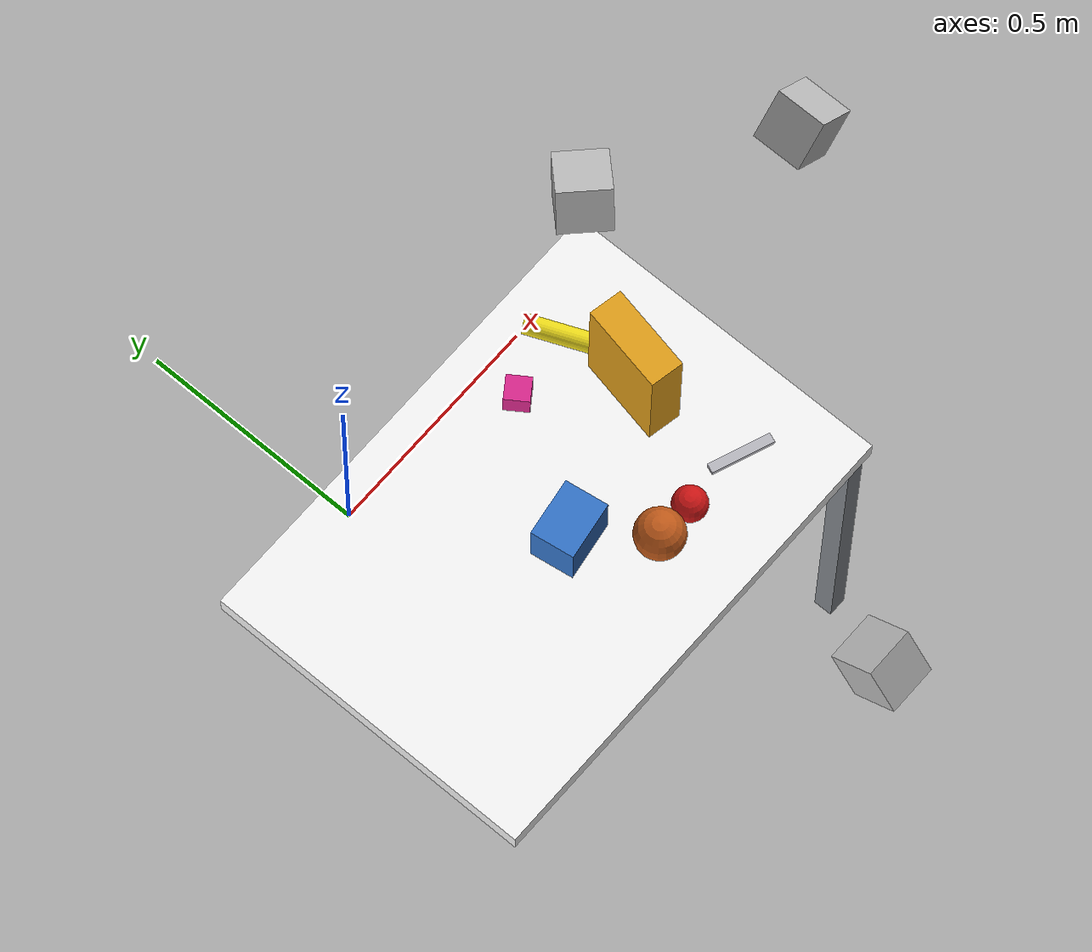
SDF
<sdf version="1.10">
 <world name="bps_room">
  <model name="experiment_table">
   <static>true</static>
   <pose>0 -0.5 0.75 0 0 0</pose>
   <link name="link">
    <collision name="collision">
     <geometry><box><size>1 0.69999999999999996 0.040000000000000001</size></box></geometry>
    </collision>
    <visual name="visual">
     <geometry><box><size>1 0.69999999999999996 0.040000000000000001</size></box></geometry>
     <material>
      <ambient>0.959999979 0.959999979 0.959999979 1</ambient>
      <diffuse>0.959999979 0.959999979 0.959999979 1</diffuse>
     </material>
    </visual>
    <inertial>
     <mass>1</mass>
     <inertia><ixx>1</ixx><ixy>0</ixy><ixz>0</ixz><iyy>1</iyy><iyz>0</iyz><izz>1</izz></inertia>
    </inertial>
   </link>
  </model>
  <model name="table_leg_fr">
   <static>true</static>
   <pose>0.46999999999999997 -0.81999999999999995 0.375 0 0 0</pose>
   <link name="link">
    <collision name="collision">
     <geometry><box><size>0.040000000000000001 0.040000000000000001 0.75</size></box></geometry>
    </collision>
    <visual name="visual">
     <geometry><box><size>0.040000000000000001 0.040000000000000001 0.75</size></box></geometry>
     <material>
      <ambient>0.5 0.519999981 0.540000021 1</ambient>
      <diffuse>0.5 0.519999981 0.540000021 1</diffuse>
     </material>
    </visual>
    <inertial>
     <mass>1</mass>
     <inertia><ixx>1</ixx><ixy>0</ixy><ixz>0</ixz><iyy>1</iyy><iyz>0</iyz><izz>1</izz></inertia>
    </inertial>
   </link>
  </model>
  <model name="obj_bowl">
   <static>false</static>
   <pose>0.10000000000000001 -0.68000000000000005 0.81999999999999995 0 0 0</pose>
   <link name="link">
    <collision name="collision">
     <geometry><sphere><radius>0.050000000000000003</radius></sphere></geometry>
    </collision>
    <visual name="visual">
     <geometry><sphere><radius>0.050000000000000003</radius></sphere></geometry>
     <material>
      <ambient>0.75 0.349999994 0.100000001 1</ambient>
      <diffuse>0.75 0.349999994 0.100000001 1</diffuse>
      <specular>0.300000012 0.300000012 0.300000012 1</specular>
     </material>
     <plugin name="gz::sim::systems::Label" filename="gz-sim-label-system"><label>3</label></plugin>
    </visual>
    <inertial>
     <mass>1</mass>
     <inertia><ixx>1</ixx><ixy>0</ixy><ixz>0</ixz><iyy>1</iyy><iyz>0</iyz><izz>1</izz></inertia>
    </inertial>
    <sensor name="obj_bowl_contact_sensor" type="contact">
     <contact><collision>collision</collision></contact>
     <update_rate>30</update_rate>
     <always_on>true</always_on>
    </sensor>
   </link>
  </model>
  <model name="obj_apple">
   <static>false</static>
   <pose>0.185 -0.68000000000000005 0.80500000000000005 0 0 0</pose>
   <link name="link">
    <collision name="collision">
     <geometry><sphere><radius>0.035000000000000003</radius></sphere></geometry>
    </collision>
    <visual name="visual">
     <geometry><sphere><radius>0.035000000000000003</radius></sphere></geometry>
     <material>
      <ambient>0.800000012 0.0799999982 0.0799999982 1</ambient>
      <diffuse>0.800000012 0.0799999982 0.0799999982 1</diffuse>
      <specular>0.400000006 0.400000006 0.400000006 1</specular>
     </material>
     <plugin name="gz::sim::systems::Label" filename="gz-sim-label-system"><label>4</label></plugin>
    </visual>
    <inertial>
     <mass>1</mass>
     <inertia><ixx>1</ixx><ixy>0</ixy><ixz>0</ixz><iyy>1</iyy><iyz>0</iyz><izz>1</izz></inertia>
    </inertial>
    <sensor name="obj_apple_contact_sensor" type="contact">
     <contact><collision>collision</collision></contact>
     <update_rate>30</update_rate>
     <always_on>true</always_on>
    </sensor>
   </link>
  </model>
  <model name="obj_spoon">
   <static>false</static>
   <pose>0.33000000000000002 -0.68000000000000005 0.77500000000000002 0 0 1.2000000000000002</pose>
   <link name="link">
    <collision name="collision"><geometry><box><size>0.02 0.13 0.01</size></box></geometry></collision>
    <visual name="visual">
     <geometry><box><size>0.02 0.13 0.01</size></box></geometry>
     <material>
      <ambient>0.720000029 0.720000029 0.75 1</ambient>
      <diffuse>0.720000029 0.720000029 0.75 1</diffuse>
      <specular>0.600000024 0.600000024 0.600000024 1</specular>
     </material>
     <plugin name="gz::sim::systems::Label" filename="gz-sim-label-system"><label>5</label></plugin>
    </visual>
    <inertial>
     <mass>1</mass>
     <inertia><ixx>1</ixx><ixy>0</ixy><ixz>0</ixz><iyy>1</iyy><iyz>0</iyz><izz>1</izz></inertia>
    </inertial>
    <sensor name="obj_spoon_contact_sensor" type="contact">
     <contact><collision>collision</collision></contact>
     <update_rate>30</update_rate>
     <always_on>true</always_on>
    </sensor>
   </link>
  </model>
  <model name="obj_tissue_box">
   <static>false</static>
   <pose>0 -0.55000000000000004 0.81999999999999995 0 0 0.14999999999999988</pose>
   <link name="link">
    <collision name="collision">
     <geometry><box><size>0.12 0.089999999999999997 0.10000000000000001</size></box></geometry>
    </collision>
    <visual name="visual">
     <geometry><box><size>0.12 0.089999999999999997 0.10000000000000001</size></box></geometry>
     <material>
      <ambient>0.200000003 0.449999988 0.779999971 1</ambient>
      <diffuse>0.200000003 0.449999988 0.779999971 1</diffuse>
      <specular>0.200000003 0.200000003 0.200000003 1</specular>
     </material>
     <plugin name="gz::sim::systems::Label" filename="gz-sim-label-system"><label>7</label></plugin>
    </visual>
    <inertial>
     <mass>1</mass>
     <inertia><ixx>1</ixx><ixy>0</ixy><ixz>0</ixz><iyy>1</iyy><iyz>0</iyz><izz>1</izz></inertia>
    </inertial>
    <sensor name="obj_tissue_box_contact_sensor" type="contact">
     <contact><collision>collision</collision></contact>
     <update_rate>30</update_rate>
     <always_on>true</always_on>
    </sensor>
   </link>
  </model>
  <model name="obj_cereal_box">
   <static>false</static>
   <pose>0.29999999999999999 -0.45000000000000001 0.89000000000000001 0 0 -0.20000000000000009</pose>
   <link name="link">
    <collision name="collision">
     <geometry><box><size>0.070000000000000007 0.17999999999999999 0.23999999999999999</size></box></geometry>
    </collision>
    <visual name="visual">
     <geometry><box><size>0.070000000000000007 0.17999999999999999 0.23999999999999999</size></box></geometry>
     <material>
      <ambient>0.879999995 0.620000005 0.100000001 1</ambient>
      <diffuse>0.879999995 0.620000005 0.100000001 1</diffuse>
      <specular>0.200000003 0.200000003 0.200000003 1</specular>
     </material>
     <plugin name="gz::sim::systems::Label" filename="gz-sim-label-system"><label>8</label></plugin>
    </visual>
    <inertial>
     <mass>1</mass>
     <inertia><ixx>1</ixx><ixy>0</ixy><ixz>0</ixz><iyy>1</iyy><iyz>0</iyz><izz>1</izz></inertia>
    </inertial>
    <sensor name="obj_cereal_box_contact_sensor" type="contact">
     <contact><collision>collision</collision></contact>
     <update_rate>30</update_rate>
     <always_on>true</always_on>
    </sensor>
   </link>
  </model>
  <model name="obj_toy_block">
   <static>false</static>
   <pose>0.14999999999999999 -0.29999999999999999 0.79500000000000004 0 0 0.59999999999999998</pose>
   <link name="link">
    <collision name="collision">
     <geometry><box><size>0.050000000000000003 0.050000000000000003 0.050000000000000003</size></box></geometry>
    </collision>
    <visual name="visual">
     <geometry><box><size>0.050000000000000003 0.050000000000000003 0.050000000000000003</size></box></geometry>
     <material>
      <ambient>0.850000024 0.150000006 0.550000012 1</ambient>
      <diffuse>0.850000024 0.150000006 0.550000012 1</diffuse>
      <specular>0.400000006 0.400000006 0.400000006 1</specular>
     </material>
     <plugin name="gz::sim::systems::Label" filename="gz-sim-label-system"><label>11</label></plugin>
    </visual>
    <inertial>
     <mass>1</mass>
     <inertia><ixx>1</ixx><ixy>0</ixy><ixz>0</ixz><iyy>1</iyy><iyz>0</iyz><izz>1</izz></inertia>
    </inertial>
    <sensor name="obj_toy_block_contact_sensor" type="contact">
     <contact><collision>collision</collision></contact>
     <update_rate>30</update_rate>
     <always_on>true</always_on>
    </sensor>
   </link>
  </model>
  <model name="obj_banana">
   <static>false</static>
   <pose>0.29999999999999999 -0.29999999999999999 0.79000000000000004 1.5708 2.7755575615628914e-17 0.40000000000000008</pose>
   <link name="link">
    <collision name="collision">
     <geometry><cylinder><radius>0.02</radius><length>0.17999999999999999</length></cylinder></geometry>
    </collision>
    <visual name="visual">
     <geometry><cylinder><radius>0.02</radius><length>0.17999999999999999</length></cylinder></geometry>
     <material>
      <ambient>0.920000017 0.850000024 0.100000001 1</ambient>
      <diffuse>0.920000017 0.850000024 0.100000001 1</diffuse>
      <specular>0.300000012 0.300000012 0.300000012 1</specular>
     </material>
     <plugin name="gz::sim::systems::Label" filename="gz-sim-label-system"><label>12</label></plugin>
    </visual>
    <inertial>
     <mass>1</mass>
     <inertia><ixx>1</ixx><ixy>0</ixy><ixz>0</ixz><iyy>1</iyy><iyz>0</iyz><izz>1</izz></inertia>
    </inertial>
    <sensor name="obj_banana_contact_sensor" type="contact">
     <contact><collision>collision</collision></contact>
     <update_rate>30</update_rate>
     <always_on>true</always_on>
    </sensor>
   </link>
  </model>
  <model name="depth_camera_v2">
   <static>true</static>
   <pose>0.6702876096865393 -0.5058333333333334 1.577919443118978 0.0 0.8726646259971648 3.141592653589793</pose>
   <link name="link">
    <pose>0.050000000000000003 0.050000000000000003 0.050000000000000003 0 0 0</pose>
    <inertial>
     <mass>0.10000000000000001</mass>
     <inertia>
      <ixx>0.00016666700000000001</ixx>
      <iyy>0.00016666700000000001</iyy>
      <izz>0.00016666700000000001</izz>
      <ixy>0</ixy>
      <ixz>0</ixz>
      <iyz>0</iyz>
     </inertia>
    </inertial>
    <collision name="collision">
     <geometry><box><size>0.10000000000000001 0.10000000000000001 0.10000000000000001</size></box></geometry>
    </collision>
    <visual name="visual">
     <geometry><box><size>0.10000000000000001 0.10000000000000001 0.10000000000000001</size></box></geometry>
    </visual>
    <sensor name="depth_camera2" type="depth_camera">
     <topic>depth_camera_v2</topic>
     <update_rate>10</update_rate>
     <enable_metrics>false</enable_metrics>
     <camera>
      <horizontal_fov>1.2</horizontal_fov>
      <image>
       <width>640</width>
       <height>480</height>
       <format>R_FLOAT32</format>
       <anti_aliasing>4</anti_aliasing>
      </image>
      <camera_info_topic>__default__</camera_info_topic>
      <triggered>false</triggered>
      <clip><near>0.10000000000000001</near><far>2</far></clip>
      <save enabled="false"><path>__default__</path></save>
      <visibility_mask>4294967295</visibility_mask>
      <noise><type>none</type><mean>0</mean><stddev>0</stddev></noise>
      <distortion><k1>0</k1><k2>0</k2><k3>0</k3><p1>0</p1><p2>0</p2><center>0.5 0.5</center></distortion>
      <lens>
       <type>stereographic</type>
       <scale_to_hfov>true</scale_to_hfov>
       <cutoff_angle>1.5707963267948966</cutoff_angle>
       <env_texture_size>256</env_texture_size>
      </lens>
     </camera>
    </sensor>
    <sensor name="rgb_camera2" type="camera">
     <topic>rgb_camera_v2</topic>
     <update_rate>10</update_rate>
     <enable_metrics>false</enable_metrics>
     <camera>
      <horizontal_fov>1.2</horizontal_fov>
      <image><width>640</width><height>480</height><format>RGB_INT8</format><anti_aliasing>4</anti_aliasing></image>
      <camera_info_topic>__default__</camera_info_topic>
      <triggered>false</triggered>
      <clip><near>0.10000000000000001</near><far>2</far></clip>
      <save enabled="false"><path>__default__</path></save>
      <visibility_mask>4294967295</visibility_mask>
      <noise><type>none</type><mean>0</mean><stddev>0</stddev></noise>
      <distortion><k1>0</k1><k2>0</k2><k3>0</k3><p1>0</p1><p2>0</p2><center>0.5 0.5</center></distortion>
      <lens>
       <type>stereographic</type>
       <scale_to_hfov>true</scale_to_hfov>
       <cutoff_angle>1.5707963267948966</cutoff_angle>
       <env_texture_size>256</env_texture_size>
      </lens>
     </camera>
    </sensor>
    <sensor name="semantic_camera2" type="segmentation_camera">
     <topic>semantic_camera_v2</topic>
     <update_rate>10</update_rate>
     <enable_metrics>false</enable_metrics>
     <camera>
      <horizontal_fov>1.2</horizontal_fov>
      <image><width>640</width><height>480</height></image>
      <clip><near>0.1</near><far>100</far></clip>
      <segmentation_type>semantic</segmentation_type>
     </camera>
    </sensor>
   </link>
  </model>
  <model name="depth_camera_v5">
   <static>true</static>
   <pose>0.02749999999999985 -1.3249853776223253 1.3854514363510462 -0.0 0.6108652381980154 1.5707963267948963</pose>
   <link name="link">
    <pose>0.050000000000000003 0.050000000000000003 0.050000000000000003 0 0 0</pose>
    <inertial>
     <mass>0.10000000000000001</mass>
     <inertia>
      <ixx>0.00016666700000000001</ixx>
      <iyy>0.00016666700000000001</iyy>
      <izz>0.00016666700000000001</izz>
      <ixy>0</ixy>
      <ixz>0</ixz>
      <iyz>0</iyz>
     </inertia>
    </inertial>
    <collision name="collision">
     <geometry><box><size>0.10000000000000001 0.10000000000000001 0.10000000000000001</size></box></geometry>
    </collision>
    <visual name="visual">
     <geometry><box><size>0.10000000000000001 0.10000000000000001 0.10000000000000001</size></box></geometry>
    </visual>
    <sensor name="depth_camera5" type="depth_camera">
     <topic>depth_camera_v5</topic>
     <update_rate>10</update_rate>
     <enable_metrics>false</enable_metrics>
     <camera>
      <horizontal_fov>1.2</horizontal_fov>
      <image>
       <width>640</width>
       <height>480</height>
       <format>R_FLOAT32</format>
       <anti_aliasing>4</anti_aliasing>
      </image>
      <camera_info_topic>__default__</camera_info_topic>
      <triggered>false</triggered>
      <clip><near>0.10000000000000001</near><far>2</far></clip>
      <save enabled="false"><path>__default__</path></save>
      <visibility_mask>4294967295</visibility_mask>
      <noise><type>none</type><mean>0</mean><stddev>0</stddev></noise>
      <distortion><k1>0</k1><k2>0</k2><k3>0</k3><p1>0</p1><p2>0</p2><center>0.5 0.5</center></distortion>
      <lens>
       <type>stereographic</type>
       <scale_to_hfov>true</scale_to_hfov>
       <cutoff_angle>1.5707963267948966</cutoff_angle>
       <env_texture_size>256</env_texture_size>
      </lens>
     </camera>
    </sensor>
    <sensor name="rgb_camera5" type="camera">
     <topic>rgb_camera_v5</topic>
     <update_rate>10</update_rate>
     <enable_metrics>false</enable_metrics>
     <camera>
      <horizontal_fov>1.2</horizontal_fov>
      <image><width>640</width><height>480</height><format>RGB_INT8</format><anti_aliasing>4</anti_aliasing></image>
      <camera_info_topic>__default__</camera_info_topic>
      <triggered>false</triggered>
      <clip><near>0.10000000000000001</near><far>2</far></clip>
      <save enabled="false"><path>__default__</path></save>
      <visibility_mask>4294967295</visibility_mask>
      <noise><type>none</type><mean>0</mean><stddev>0</stddev></noise>
      <distortion><k1>0</k1><k2>0</k2><k3>0</k3><p1>0</p1><p2>0</p2><center>0.5 0.5</center></distortion>
      <lens>
       <type>stereographic</type>
       <scale_to_hfov>true</scale_to_hfov>
       <cutoff_angle>1.5707963267948966</cutoff_angle>
       <env_texture_size>256</env_texture_size>
      </lens>
     </camera>
    </sensor>
    <sensor name="semantic_camera5" type="segmentation_camera">
     <topic>semantic_camera_v5</topic>
     <update_rate>10</update_rate>
     <enable_metrics>false</enable_metrics>
     <camera>
      <horizontal_fov>1.2</horizontal_fov>
      <image><width>640</width><height>480</height></image>
      <clip><near>0.1</near><far>100</far></clip>
      <segmentation_type>semantic</segmentation_type>
     </camera>
    </sensor>
   </link>
  </model>
  <model name="depth_camera_v6">
   <static>true</static>
   <pose>0.2451602863831778 -0.28817304695015555 1.6575983587073175 -0.0 1.2217304763960306 -2.356194490192345</pose>
   <link name="link">
    <pose>0.050000000000000003 0.050000000000000003 0.050000000000000003 0 0 0</pose>
    <inertial>
     <mass>0.10000000000000001</mass>
     <inertia>
      <ixx>0.00016666700000000001</ixx>
      <iyy>0.00016666700000000001</iyy>
      <izz>0.00016666700000000001</izz>
      <ixy>0</ixy>
      <ixz>0</ixz>
      <iyz>0</iyz>
     </inertia>
    </inertial>
    <collision name="collision">
     <geometry><box><size>0.10000000000000001 0.10000000000000001 0.10000000000000001</size></box></geometry>
    </collision>
    <visual name="visual">
     <geometry><box><size>0.10000000000000001 0.10000000000000001 0.10000000000000001</size></box></geometry>
    </visual>
    <sensor name="depth_camera6" type="depth_camera">
     <topic>depth_camera_v6</topic>
     <update_rate>10</update_rate>
     <enable_metrics>false</enable_metrics>
     <camera>
      <horizontal_fov>1.2</horizontal_fov>
      <image>
       <width>640</width>
       <height>480</height>
       <format>R_FLOAT32</format>
       <anti_aliasing>4</anti_aliasing>
      </image>
      <camera_info_topic>__default__</camera_info_topic>
      <triggered>false</triggered>
      <clip><near>0.10000000000000001</near><far>2</far></clip>
      <save enabled="false"><path>__default__</path></save>
      <visibility_mask>4294967295</visibility_mask>
      <noise><type>none</type><mean>0</mean><stddev>0</stddev></noise>
      <distortion><k1>0</k1><k2>0</k2><k3>0</k3><p1>0</p1><p2>0</p2><center>0.5 0.5</center></distortion>
      <lens>
       <type>stereographic</type>
       <scale_to_hfov>true</scale_to_hfov>
       <cutoff_angle>1.5707963267948966</cutoff_angle>
       <env_texture_size>256</env_texture_size>
      </lens>
     </camera>
    </sensor>
    <sensor name="rgb_camera6" type="camera">
     <topic>rgb_camera_v6</topic>
     <update_rate>10</update_rate>
     <enable_metrics>false</enable_metrics>
     <camera>
      <horizontal_fov>1.2</horizontal_fov>
      <image><width>640</width><height>480</height><format>RGB_INT8</format><anti_aliasing>4</anti_aliasing></image>
      <camera_info_topic>__default__</camera_info_topic>
      <triggered>false</triggered>
      <clip><near>0.10000000000000001</near><far>2</far></clip>
      <save enabled="false"><path>__default__</path></save>
      <visibility_mask>4294967295</visibility_mask>
      <noise><type>none</type><mean>0</mean><stddev>0</stddev></noise>
      <distortion><k1>0</k1><k2>0</k2><k3>0</k3><p1>0</p1><p2>0</p2><center>0.5 0.5</center></distortion>
      <lens>
       <type>stereographic</type>
       <scale_to_hfov>true</scale_to_hfov>
       <cutoff_angle>1.5707963267948966</cutoff_angle>
       <env_texture_size>256</env_texture_size>
      </lens>
     </camera>
    </sensor>
    <sensor name="semantic_camera6" type="segmentation_camera">
     <topic>semantic_camera_v6</topic>
     <update_rate>10</update_rate>
     <enable_metrics>false</enable_metrics>
     <camera>
      <horizontal_fov>1.2</horizontal_fov>
      <image><width>640</width><height>480</height></image>
      <clip><near>0.1</near><far>100</far></clip>
      <segmentation_type>semantic</segmentation_type>
     </camera>
    </sensor>
   </link>
  </model>
 </world>
</sdf>
